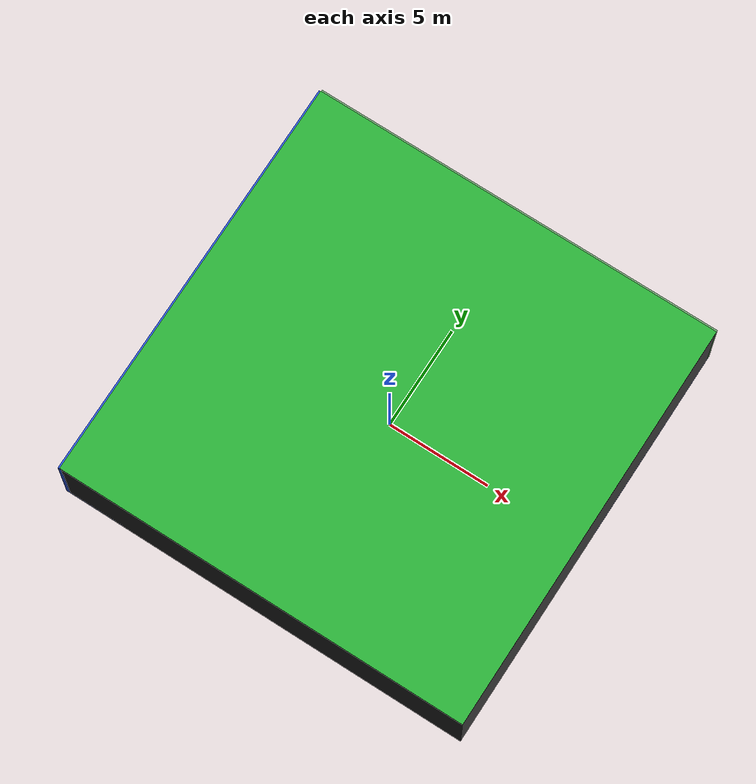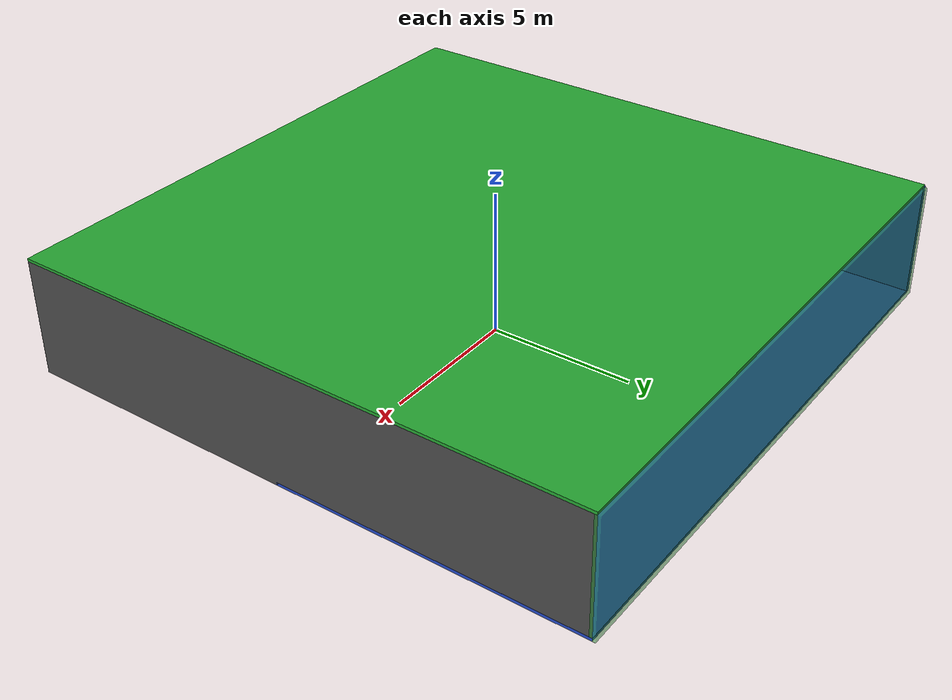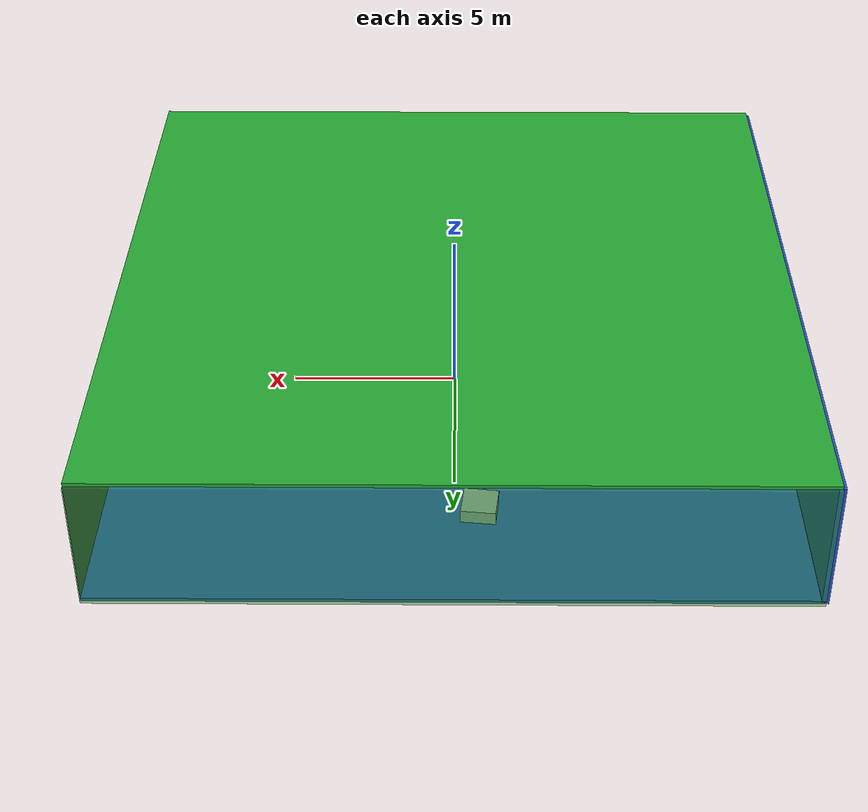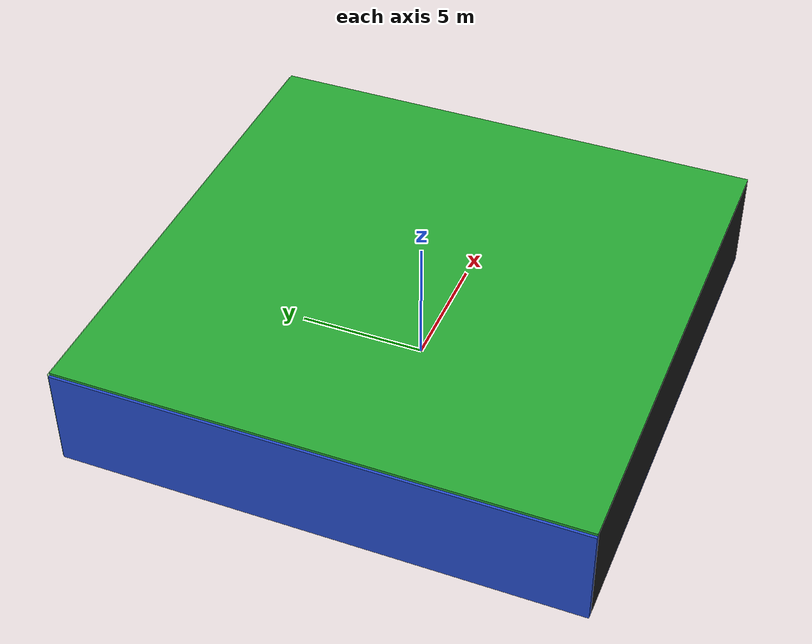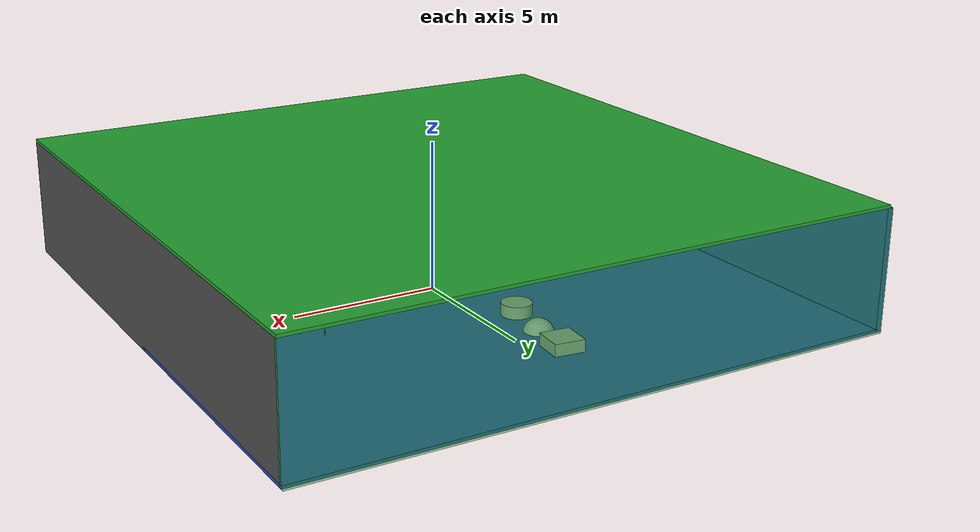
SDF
<sdf version="1.4">
 <world name="default">
  <physics type="ode">
   <max_step_size>0.001</max_step_size>
   <real_time_factor>1</real_time_factor>
   <real_time_update_rate>1000</real_time_update_rate>
   <gravity>0 0 -9.8</gravity>
  </physics>
  <scene><ambient>0.4 0.4 0.4 1</ambient><background>0.7 0.7 0.7 1</background><shadows>1</shadows></scene>
  <model name="Surrounding">
   <static>1</static>
   <link name="Ceiling">
    <collision name="Ceiling_Collision"><geometry><box><size>20 20 0.1</size></box></geometry></collision>
    <visual name="Ceiling_Visual">
     <geometry><box><size>20 20 0.1</size></box></geometry>
     <material>
      <script><uri>file://media/materials/scripts/gazebo.material</uri><name>Gazebo/GreenGlow</name></script>
     </material>
    </visual>
    <pose>0 0 4.05 0 0 0</pose>
   </link>
   <link name="Wall_South">
    <collision name="Wall_South_Collision">
     <geometry><box><size>20 0 4</size></box></geometry>
     <pose>0 0 2 0 -0 0</pose>
    </collision>
    <visual name="Wall_South_Visual">
     <pose>0 0 2 0 -0 0</pose>
     <geometry><box><size>20 0 4</size></box></geometry>
     <material>
      <script><uri>file://media/materials/scripts/gazebo.material</uri><name>Gazebo/Black</name></script>
     </material>
    </visual>
    <velocity_decay><linear>0</linear><angular>0</angular></velocity_decay>
    <pose>0 -10 0 0 -0 0</pose>
   </link>
   <link name="Wall_East">
    <collision name="Wall_21_Collision">
     <geometry><box><size>20 0 4</size></box></geometry>
     <pose>0 0 2 0 -0 0</pose>
    </collision>
    <visual name="Wall_21_Visual">
     <pose>0 0 2 0 -0 0</pose>
     <geometry><box><size>20 0 4</size></box></geometry>
     <material>
      <script><uri>file://media/materials/scripts/gazebo.material</uri><name>Gazebo/Road</name></script>
     </material>
    </visual>
    <velocity_decay><linear>0</linear><angular>0</angular></velocity_decay>
    <pose>10 0 0 0 -0 1.5708</pose>
   </link>
   <link name="Wall_North">
    <collision name="Wall_22_Collision">
     <geometry><box><size>20 0.2 4</size></box></geometry>
     <pose>0 0 2 0 -0 0</pose>
    </collision>
    <visual name="Wall_22_Visual">
     <pose>0 0 2 0 -0 0</pose>
     <geometry><box><size>20 0.2 4</size></box></geometry>
     <material>
      <script><uri>file://media/materials/scripts/gazebo.material</uri><name>Gazebo/GreenTransparent</name></script>
     </material>
    </visual>
    <velocity_decay><linear>0</linear><angular>0</angular></velocity_decay>
    <pose>0 10 0 0 -0 0</pose>
   </link>
   <link name="Wall_West">
    <collision name="Wall_23_Collision">
     <geometry><box><size>20 0.2 4</size></box></geometry>
     <pose>0 0 2 0 -0 0</pose>
    </collision>
    <visual name="Wall_23_Visual">
     <pose>0 0 2 0 -0 0</pose>
     <geometry><box><size>20 0.2 4</size></box></geometry>
     <material>
      <script><uri>file://media/materials/scripts/gazebo.material</uri><name>Gazebo/BlueGlow</name></script>
     </material>
    </visual>
    <velocity_decay><linear>0</linear><angular>0</angular></velocity_decay>
    <pose>-10 0 0 0 0 -1.5708</pose>
   </link>
   <link name="Ground_link">
    <collision name="collision">
     <pose>0 0 .05 0 -0 0</pose>
     <geometry><box><size>20 20 0.1</size></box></geometry>
    </collision>
    <visual name="visual">
     <pose>0 0 .05 0 -0 0</pose>
     <geometry><box><size>20 20 0.1</size></box></geometry>
     <material>
      <script><uri>file://media/materials/scripts/gazebo.material</uri><name>Gazebo/BlueLaser</name></script>
     </material>
    </visual>
   </link>
   <static>1</static>
  </model>
  <spherical_coordinates>
   <surface_model>EARTH_WGS84</surface_model>
   <latitude_deg>0</latitude_deg>
   <longitude_deg>0</longitude_deg>
   <elevation>0</elevation>
   <heading_deg>0</heading_deg>
  </spherical_coordinates>
  <light name="lightball_0" type="diffuse">
   <diffuse>0.8 0.8 0.8 1</diffuse>
   <specular>0.2 0.2 0.2 1</specular>
   <attenuation>
    <range>100</range>
    <constant>0.7</constant>
    <linear>0.01</linear>
    <quadratic>0.001</quadratic>
   </attenuation>
   <direction>-0.5 0.1 -0.9</direction>
   <pose>5.91975594106 8.62561518906 3.16980519591 0 0 0</pose>
  </light>
  <light name="lightball_1" type="diffuse">
   <diffuse>0.8 0.8 0.8 1</diffuse>
   <specular>0.2 0.2 0.2 1</specular>
   <attenuation>
    <range>100</range>
    <constant>0.7</constant>
    <linear>0.01</linear>
    <quadratic>0.001</quadratic>
   </attenuation>
   <direction>-0.5 0.1 -0.9</direction>
   <pose>5.0189767059 9.62405291578 2.15171967715 0 0 0</pose>
  </light>
  <light name="lightball_2" type="diffuse">
   <diffuse>0.8 0.8 0.8 1</diffuse>
   <specular>0.2 0.2 0.2 1</specular>
   <attenuation>
    <range>100</range>
    <constant>0.7</constant>
    <linear>0.01</linear>
    <quadratic>0.001</quadratic>
   </attenuation>
   <direction>-0.5 0.1 -0.9</direction>
   <pose>-3.07220829636 -0.538755090731 2.29334889768 0 0 0</pose>
  </light>
  <light name="lightball_3" type="diffuse">
   <diffuse>0.8 0.8 0.8 1</diffuse>
   <specular>0.2 0.2 0.2 1</specular>
   <attenuation>
    <range>100</range>
    <constant>0.7</constant>
    <linear>0.01</linear>
    <quadratic>0.001</quadratic>
   </attenuation>
   <direction>-0.5 0.1 -0.9</direction>
   <pose>-1.05059966195 3.74370185463 3.17547329891 0 0 0</pose>
  </light>
  <light name="lightball_4" type="diffuse">
   <diffuse>0.8 0.8 0.8 1</diffuse>
   <specular>0.2 0.2 0.2 1</specular>
   <attenuation>
    <range>100</range>
    <constant>0.7</constant>
    <linear>0.01</linear>
    <quadratic>0.001</quadratic>
   </attenuation>
   <direction>-0.5 0.1 -0.9</direction>
   <pose>-6.52673099423 2.05444831948 2.71729257774 0 0 0</pose>
  </light>
  <light name="lightball_5" type="diffuse">
   <diffuse>0.8 0.8 0.8 1</diffuse>
   <specular>0.2 0.2 0.2 1</specular>
   <attenuation>
    <range>100</range>
    <constant>0.7</constant>
    <linear>0.01</linear>
    <quadratic>0.001</quadratic>
   </attenuation>
   <direction>-0.5 0.1 -0.9</direction>
   <pose>0.386240437385 -6.04096765067 1.11708153092 0 0 0</pose>
  </light>
  <light name="lightball_6" type="diffuse">
   <diffuse>0.8 0.8 0.8 1</diffuse>
   <specular>0.2 0.2 0.2 1</specular>
   <attenuation>
    <range>100</range>
    <constant>0.7</constant>
    <linear>0.01</linear>
    <quadratic>0.001</quadratic>
   </attenuation>
   <direction>-0.5 0.1 -0.9</direction>
   <pose>-1.61773754433 7.3706066413 2.56189534221 0 0 0</pose>
  </light>
  <light name="lightball_7" type="diffuse">
   <diffuse>0.8 0.8 0.8 1</diffuse>
   <specular>0.2 0.2 0.2 1</specular>
   <attenuation>
    <range>100</range>
    <constant>0.7</constant>
    <linear>0.01</linear>
    <quadratic>0.001</quadratic>
   </attenuation>
   <direction>-0.5 0.1 -0.9</direction>
   <pose>7.25313631606 -3.54549561521 0.746335850117 0 0 0</pose>
  </light>
  <include>
   <uri>model://textured_shapes</uri>
   <pose>-8.07879586662 -5.06698289123 0 0 0 0.109962851995</pose>
  </include>
  <include>
   <uri>model://construction_cone</uri>
   <pose>-7.17168449023 -0.944077061847 0 0 0 2.4995843972</pose>
  </include>
  <include>
   <uri>model://textured_shapes</uri>
   <pose>-5.24750554706 -4.96410832241 0 0 0 2.22398228137</pose>
  </include>
  <include>
   <uri>model://construction_cone</uri>
   <pose>-1.21745363027 -6.82613445255 0 0 0 1.02012119891</pose>
  </include>
  <include>
   <uri>model://textured_shapes</uri>
   <pose>-0.903116304614 4.92194994877 0 0 0 3.03578356289</pose>
  </include>
  <include>
   <uri>model://textured_shapes</uri>
   <pose>4.42664671437 -1.33185237295 0 0 0 0.27637240046</pose>
  </include>
  <include><uri>model://table</uri><pose>4.7692337134 1.2516630784 0 0 0 0.848799271267</pose></include>
 </world>
</sdf>

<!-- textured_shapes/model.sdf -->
<sdf version="1.6">
  <model name="textured_shapes">
    <pose>0 0 0.5 0 0 0</pose>
    <link name="box">
      <pose>0 -1.5 0 0 0 0</pose>
      <collision name="collision">
        <geometry>
          <box>
            <size>1 1 1</size>
          </box>
        </geometry>
      </collision>
      <visual name="visual">
        <geometry>
          <box>
            <size>1 1 1</size>
          </box>
        </geometry>
        <material>
          <script>
            <uri>model://../model_source/models/textured_shapes/materials/scripts</uri>
            <uri>model://../model_source/models/textured_shapes/materials/textures</uri>
            <name>TexturedShape/Squares</name>
          </script>
        </material>
      </visual>
    </link>
    <link name="sphere">
      <collision name="collision">
        <geometry>
          <sphere>
            <radius>0.5</radius>
          </sphere>
        </geometry>
      </collision>
      <visual name="visual">
        <geometry>
          <sphere>
            <radius>0.5</radius>
          </sphere>
        </geometry>
        <material>
          <script>
            <uri>model://../model_source/models/textured_shapes/materials/scripts</uri>
            <uri>model://../model_source/models/textured_shapes/materials/textures</uri>
            <name>TexturedShape/Squares</name>
          </script>
        </material>
      </visual>
    </link>
    <link name="cylinder">
      <pose>0 1.5 0 0 0 0</pose>
      <collision name="collision">
        <geometry>
          <cylinder>
            <radius>0.5</radius>
            <length>1</length>
          </cylinder>
        </geometry>
      </collision>
      <visual name="visual">
        <geometry>
          <cylinder>
            <radius>0.5</radius>
            <length>1</length>
          </cylinder>
        </geometry>
        <material>
          <script>
            <uri>model://../model_source/models/textured_shapes/materials/scripts</uri>
            <uri>model://../model_source/models/textured_shapes/materials/textures</uri>
            <name>TexturedShape/Squares</name>
          </script>
        </material>
      </visual>
    </link>
  </model>
</sdf>

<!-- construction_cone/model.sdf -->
<sdf version="1.5">
  <model name="Construction Cone">
    <link name="link">
      <collision name="collision">
        <geometry>
          <mesh>
            <scale>10 10 10</scale>
            <uri>file://isr-testbed/construction_cone/meshes/construction_cone.dae</uri>
          </mesh>
        </geometry>
      </collision>
      <visual name="visual">
        <geometry>
          <mesh>
            <scale>10 10 10</scale>
            <uri>file://isr-testbed/construction_cone/meshes/construction_cone.dae</uri>
          </mesh>
        </geometry>
      </visual>
    </link>
  </model>
</sdf>

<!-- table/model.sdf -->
<sdf version="1.5">
  <model name="table">
    <static>true</static>
    <link name="link">
      <collision name="surface">
        <pose>0 0 1.0 0 0 0</pose>
        <geometry>
          <box>
            <size>1.5 0.8 0.03</size>
          </box>
        </geometry>
        <surface>
          <friction>
            <ode>
              <mu>0.6</mu>
              <mu2>0.6</mu2>
            </ode>
          </friction>
        </surface>
      </collision>
      <visual name="visual1">
        <pose>0 0 1.0 0 0 0</pose>
        <geometry>
          <box>
            <size>1.5 0.8 0.03</size>
          </box>
        </geometry>
        <material>
          <script>
            <uri>model://media/materials/scripts/gazebo.material</uri>
            <name>Gazebo/Wood</name>
          </script>
        </material>
      </visual>
      <collision name="front_left_leg">
        <pose>0.68 0.38 0.5 0 0 0</pose>
        <geometry>
          <cylinder>
            <radius>0.02</radius>
            <length>1.0</length>
          </cylinder>
        </geometry>
      </collision>
      <visual name="front_left_leg">
        <pose>0.68 0.38 0.5 0 0 0</pose>
        <geometry>
          <cylinder>
            <radius>0.02</radius>
            <length>1.0</length>
          </cylinder>
        </geometry>
        <material>
          <script>
            <uri>model://media/materials/scripts/gazebo.material</uri>
            <name>Gazebo/Grey</name>
          </script>
        </material>
      </visual>
      <collision name="front_right_leg">
        <pose>0.68 -0.38 0.5 0 0 0</pose>
        <geometry>
          <cylinder>
            <radius>0.02</radius>
            <length>1.0</length>
          </cylinder>
        </geometry>
      </collision>
      <visual name="front_right_leg">
        <pose>0.68 -0.38 0.5 0 0 0</pose>
        <geometry>
          <cylinder>
            <radius>0.02</radius>
            <length>1.0</length>
          </cylinder>
        </geometry>
        <material>
          <script>
            <uri>model://media/materials/scripts/gazebo.material</uri>
            <name>Gazebo/Grey</name>
          </script>
        </material>
      </visual>
      <collision name="back_right_leg">
        <pose>-0.68 -0.38 0.5 0 0 0</pose>
        <geometry>
          <cylinder>
            <radius>0.02</radius>
            <length>1.0</length>
          </cylinder>
        </geometry>
      </collision>
      <visual name="back_right_leg">
        <pose>-0.68 -0.38 0.5 0 0 0</pose>
        <geometry>
          <cylinder>
            <radius>0.02</radius>
            <length>1.0</length>
          </cylinder>
        </geometry>
        <material>
          <script>
            <uri>model://media/materials/scripts/gazebo.material</uri>
            <name>Gazebo/Grey</name>
          </script>
        </material>
      </visual>
      <collision name="back_left_leg">
        <pose>-0.68 0.38 0.5 0 0 0</pose>
        <geometry>
          <cylinder>
            <radius>0.02</radius>
            <length>1.0</length>
          </cylinder>
        </geometry>
      </collision>
      <visual name="back_left_leg">
        <pose>-0.68 0.38 0.5 0 0 0</pose>
        <geometry>
          <cylinder>
            <radius>0.02</radius>
            <length>1.0</length>
          </cylinder>
        </geometry>
        <material>
          <script>
            <uri>model://media/materials/scripts/gazebo.material</uri>
            <name>Gazebo/Grey</name>
          </script>
        </material>
      </visual>
    </link>
  </model>
</sdf>
